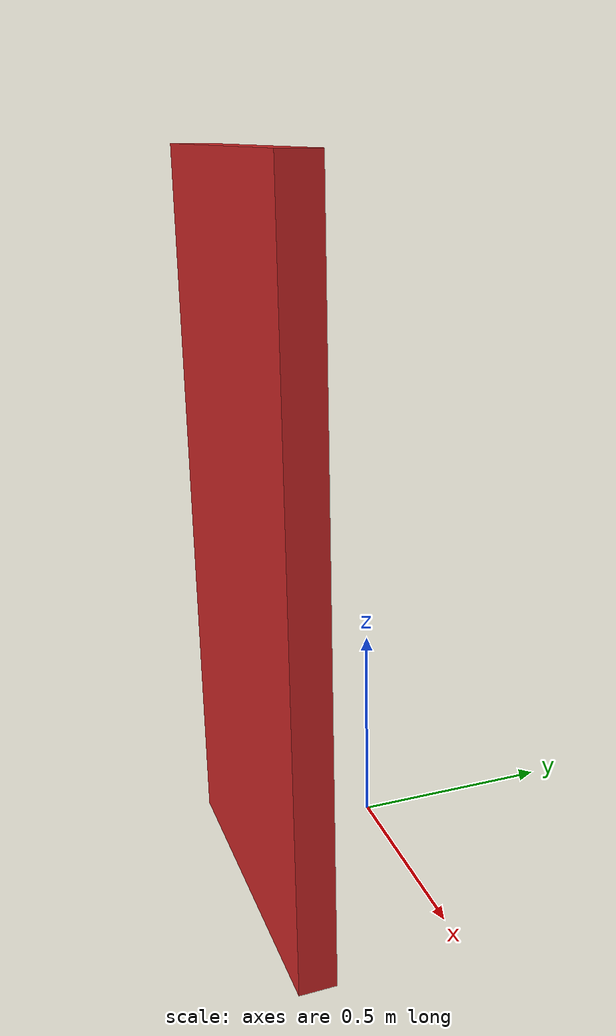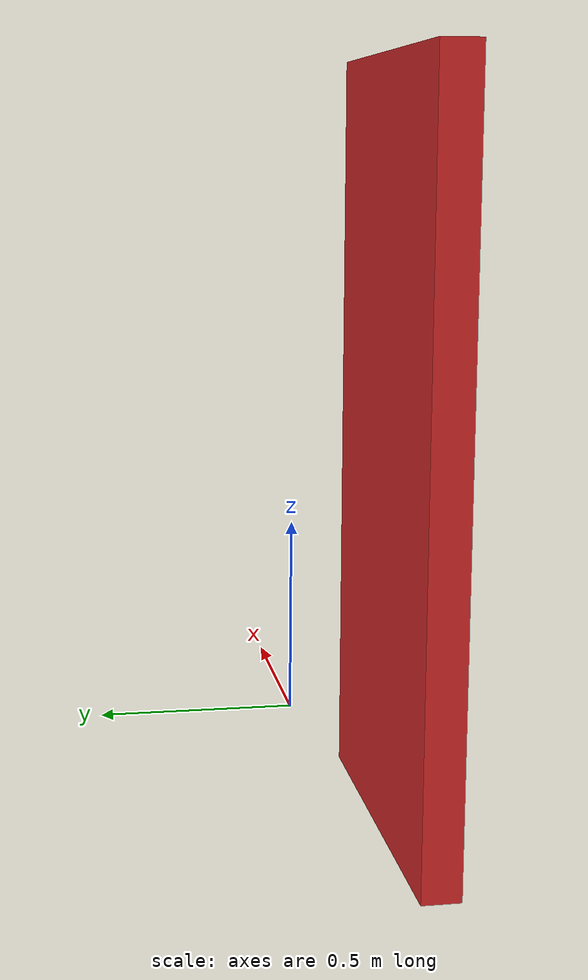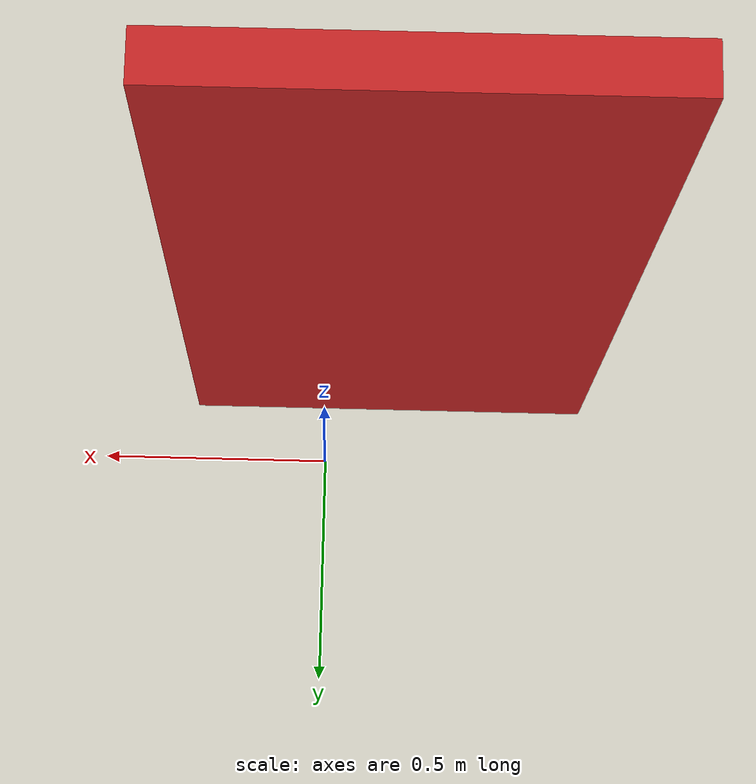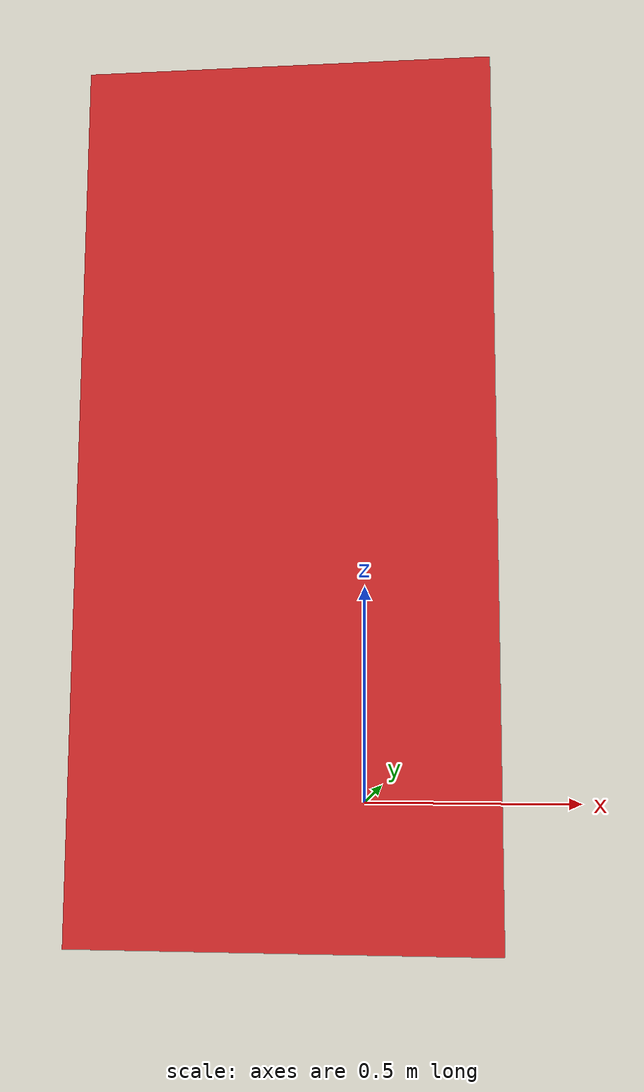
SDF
<sdf version='1.5'>
  <model name='Flip_Door'>

    <link name='hinge'>
      <pose>0 0 0 0 0 0</pose>
      <inertial>
        <pose>-0.05 0 0 0 0 0</pose>
        <mass>0.5</mass>
        <inertia>
          <ixx>1</ixx>
          <ixy>0</ixy>
          <ixz>0</ixz>
          <iyy>100</iyy>
          <iyz>0</iyz>
          <izz>1</izz>
        </inertia>
      </inertial>

      <velocity_decay>
        <linear>0</linear>
        <angular>0</angular>
      </velocity_decay>
    </link>

    <link name='door'>
      <pose>0.05 -0.2 0.35 0 0 -1.57</pose>
      <inertial>
        <pose>0.05 -0.2 0.35 0 0 -1.57</pose>
        <mass>5</mass>
        <inertia>
          <ixx>1</ixx>
          <ixy>0</ixy>
          <ixz>0</ixz>
          <iyy>100</iyy>
          <iyz>0</iyz>
          <izz>1</izz>
        </inertia>
      </inertial>
      <collision name='door_collision'>
        <pose>0.05 -0.2 0.35 0 0 -1.57</pose>
        <geometry>
          <box>
            <size>0.927 0.1 1.96</size>
          </box>
        </geometry>
        <surface>
          <contact>
            <ode/>
          </contact>
          <friction>
            <ode/>
          </friction>
        </surface>
      </collision>
      <visual name='door_visual'>
        <pose>0.05 -0.2 0.35 0 0 -1.57</pose>
        <geometry>
          <box>
            <size>0.927 0.1 1.96</size>
          </box>
        </geometry>
        <material>
          <script>
            <name>Gazebo/Red</name>
            <uri>__default__</uri>
          </script>
        </material>
      </visual>
      <gravity>1</gravity>
      <velocity_decay>
        <linear>0</linear>
        <angular>0</angular>
      </velocity_decay>
      <self_collide>0</self_collide>
    </link>

    <joint name='door_hinge' type='revolute'>
      <child>door</child>
      <parent>hinge</parent>
      <pose>0.08 0 0 0 0 0</pose>
      <axis>
        <xyz>0 0 1</xyz>
        <limit>
          <lower>-1.57</lower>
          <upper>0</upper>
          <effort>0</effort>
          <velocity>10</velocity>
        </limit>
        <dynamics/>
      </axis>

    </joint>

    <joint name='floor_link' type='revolute'>
      <child>hinge</child>
      <parent>world</parent>
      <axis>
        <xyz>0 0 1</xyz>
        <limit>
          <lower>0</lower>
          <upper>0</upper>
          <effort>0</effort>
          <velocity>0</velocity>
        </limit>
        <dynamics/>
      </axis>
    </joint>

  <plugin name="flip_door" filename="libflip_door.so">
    <door_direction>clockwise</door_direction>
    <model_domain_space>flip_door_</model_domain_space>
    <bot_pose_topics>sesto0/modelPose/, sesto1/modelPose</bot_pose_topics>
  </plugin>

  </model>
</sdf>
